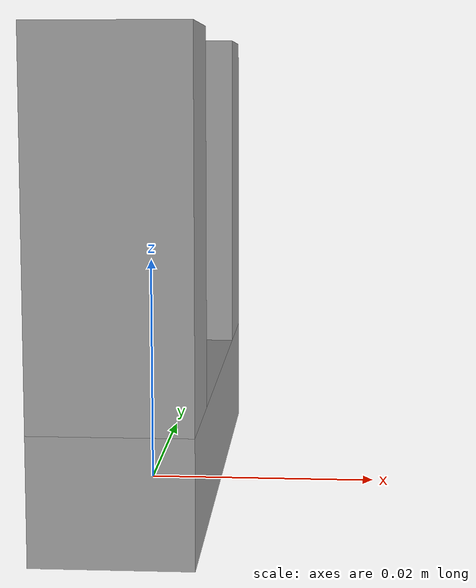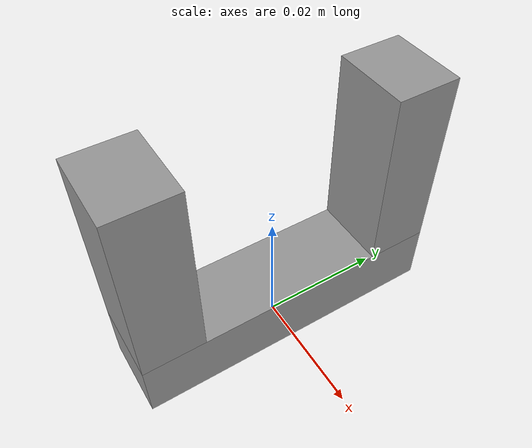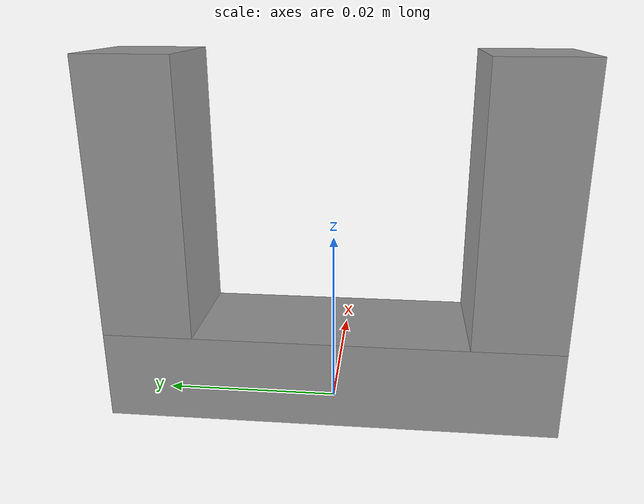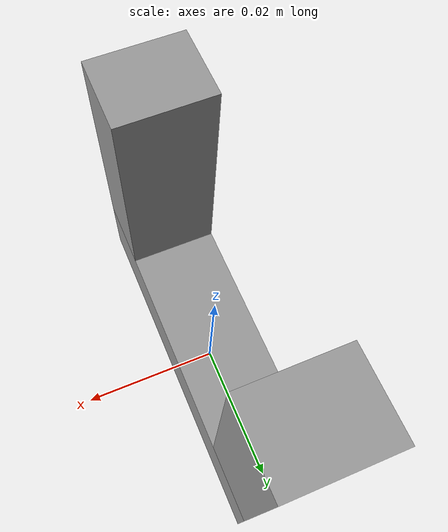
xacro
<?xml version="1.0"?>
<robot xmlns:xacro="http://www.ros.org/wiki/xacro">

    <xacro:property name="gripper_base_length" value="0.0125" />
    <xacro:property name="gripper_base_width" value="0.05" />
    <xacro:property name="gripper_base_height" value="0.01" />

    <xacro:property name="gripper_left_finger_length" value="0.0125" />
    <xacro:property name="gripper_left_finger_width" value="0.01" />
    <xacro:property name="gripper_left_finger_height" value="0.03" />

    <xacro:property name="gripper_right_finger_length" value="0.0125" />
    <xacro:property name="gripper_right_finger_width" value="0.01" />
    <xacro:property name="gripper_right_finger_height" value="0.03" />

    <link name="gripper_base_link">
        <visual>
            <geometry>
                <box size="${gripper_base_length} ${gripper_base_width} ${gripper_base_height}"/>
            </geometry>
            <origin xyz="0 0 ${gripper_base_height / 2}" rpy="0 0 0" />
            <material name="grey" />
        </visual>
        <collision>
            <geometry>
                <box size="${gripper_base_length} ${gripper_base_width} ${gripper_base_height}"/>
            </geometry>
            <origin xyz="0 0 ${gripper_base_height / 2}" rpy="0 0 0" />
        </collision>
    </link>

    <link name="gripper_left_finger">
        <visual>
            <geometry>
                <box size="${gripper_left_finger_length} ${gripper_left_finger_width} ${gripper_left_finger_height}"/>
            </geometry>
            <origin xyz="0 0 ${gripper_left_finger_height / 2}" rpy="0 0 0" />
            <material name="grey" />
        </visual>
        <collision>
            <geometry>
                <box size="${gripper_left_finger_length} ${gripper_left_finger_width} ${gripper_left_finger_height}"/>
            </geometry>
            <origin xyz="0 0 ${gripper_left_finger_height / 2}" rpy="0 0 0" />
        </collision>
    </link>

    <link name="gripper_right_finger">
        <visual>
            <geometry>
                <box size="${gripper_right_finger_length} ${gripper_right_finger_width} ${gripper_right_finger_height}"/>
            </geometry>
            <origin xyz="0 0 ${gripper_left_finger_height / 2}" rpy="0 0 0" />
            <material name="grey" />
        </visual>
        <collision>
            <geometry>
                <box size="${gripper_right_finger_length} ${gripper_right_finger_width} ${gripper_right_finger_height}"/>
            </geometry>
            <origin xyz="0 0 ${gripper_left_finger_height / 2}" rpy="0 0 0" />
        </collision>
    </link>

    <joint name="gripper_base_left_finger_joint" type="prismatic">
        <parent link="gripper_base_link"/>
        <child link="gripper_left_finger"/>
        <origin xyz="0 ${(gripper_base_width / 2) - (gripper_left_finger_width / 2)} ${gripper_base_height}" rpy="0 0 0"/>
        <axis xyz="0 1 0"/>
        <limit lower="${-((gripper_base_width / 2) - gripper_left_finger_width)}" upper="0.0" effort="1000.0" velocity="1.0"/>
        <mimic joint="gripper_base_right_finger_joint" multiplier="-1.0" offset="0.0"/>
    </joint>

    <joint name="gripper_base_right_finger_joint" type="prismatic">
        <parent link="gripper_base_link"/>
        <child link="gripper_right_finger"/>
        <origin xyz="0 ${-(gripper_base_width / 2) + (gripper_right_finger_width / 2)} ${gripper_base_height}" rpy="0 0 0"/>
        <axis xyz="0 1 0"/>
        <limit lower="0.0" upper="${(gripper_base_width / 2) - gripper_left_finger_width}" effort="1000.0" velocity="1.0"/>
    </joint>

</robot>
